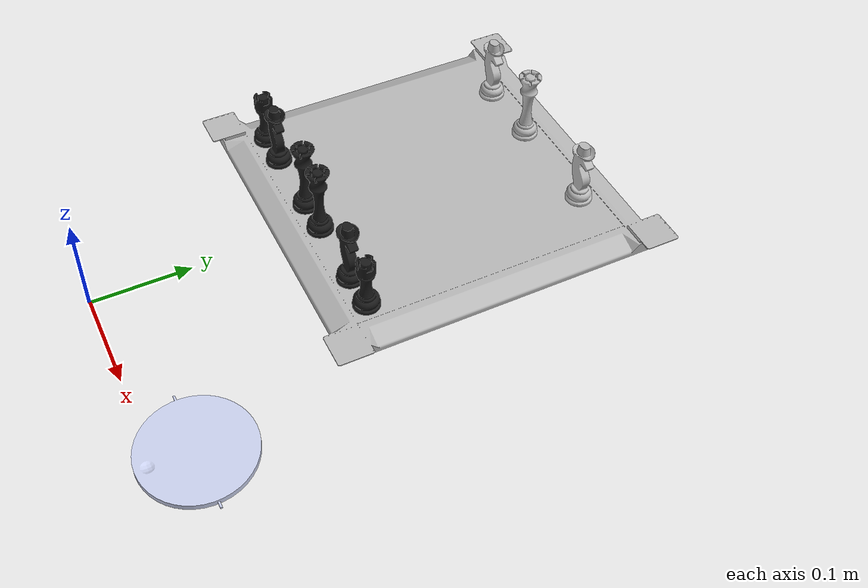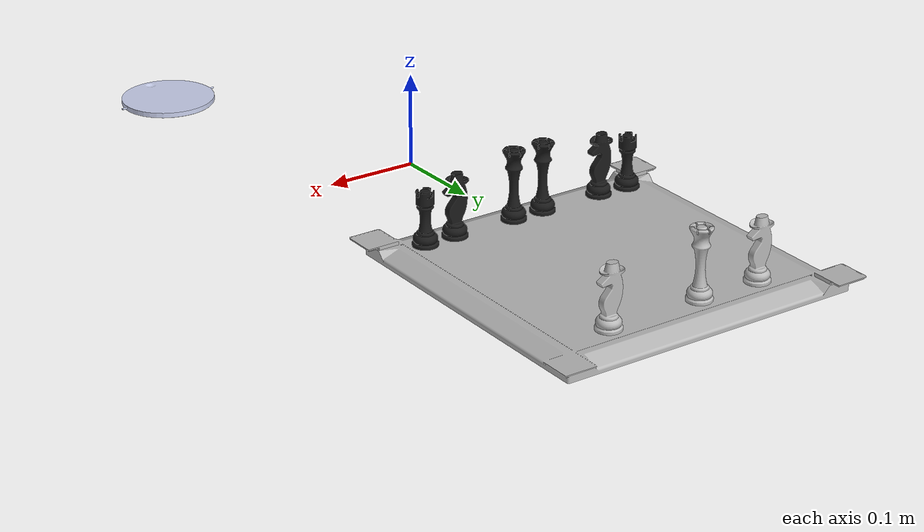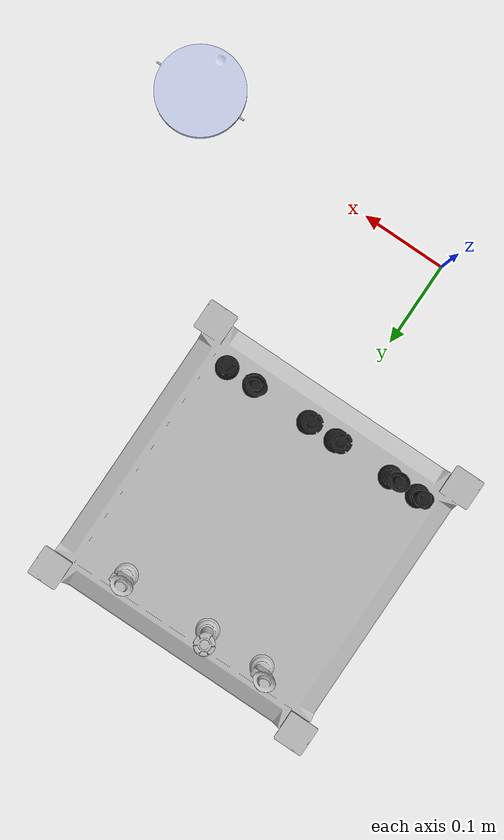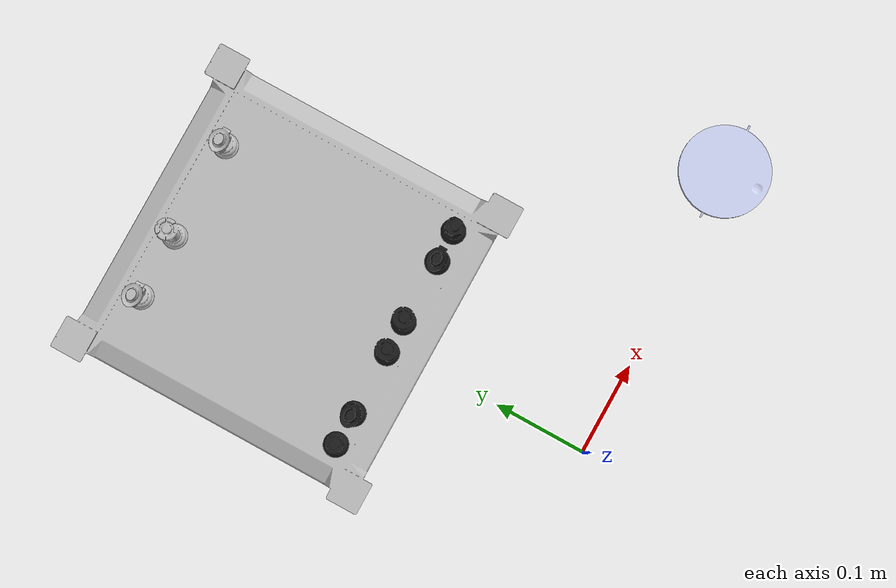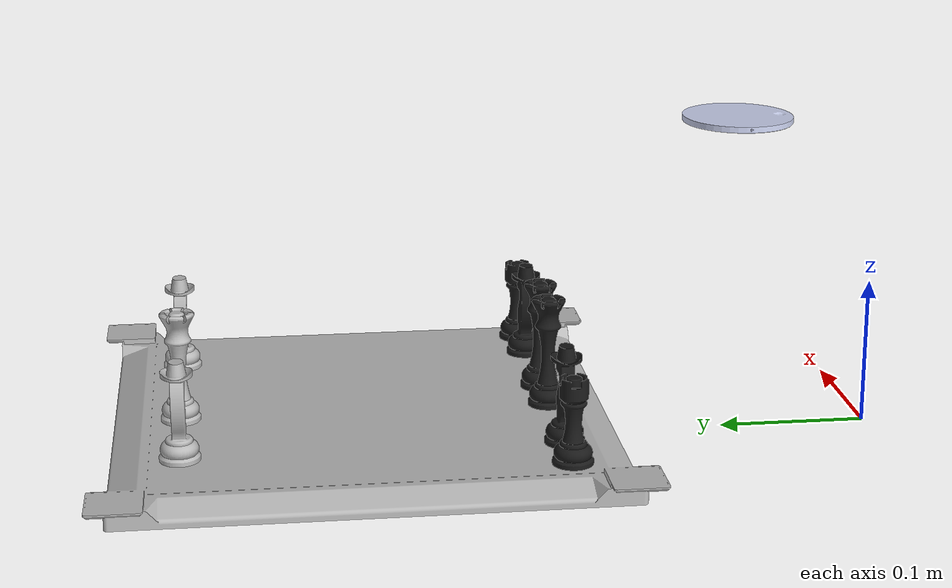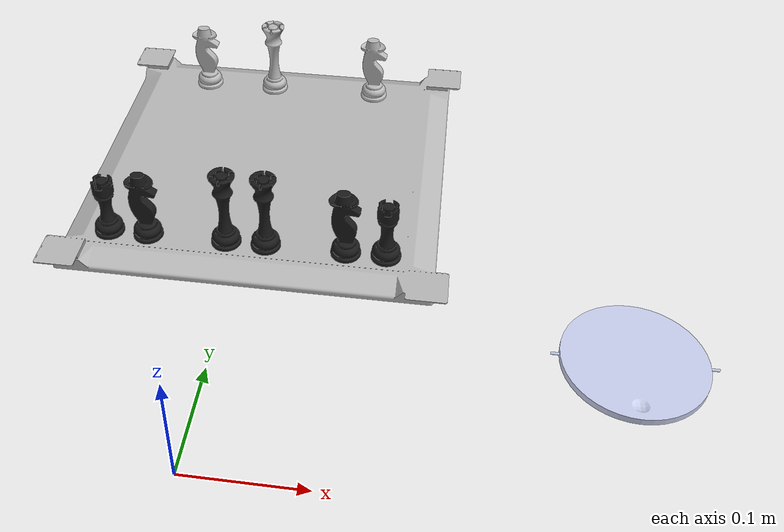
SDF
<sdf version="1.7">
 <world name="default">
  <gravity>0 0 -9.8</gravity>
  <magnetic_field>6e-06 2.3e-05 -4.2e-05</magnetic_field>
  <atmosphere type="adiabatic"/>
  <physics type="ode">
   <max_step_size>0.001</max_step_size>
   <real_time_factor>1</real_time_factor>
   <real_time_update_rate>1000</real_time_update_rate>
  </physics>
  <scene><ambient>0.4 0.4 0.4 1</ambient><background>0.7 0.7 0.7 1</background><shadows>1</shadows></scene>
  <audio><device>default</device></audio>
  <spherical_coordinates>
   <surface_model>EARTH_WGS84</surface_model>
   <latitude_deg>0</latitude_deg>
   <longitude_deg>0</longitude_deg>
   <elevation>0</elevation>
   <heading_deg>0</heading_deg>
  </spherical_coordinates>
  <model name="board">
   <static>1</static>
   <link name="link">
    <visual name="visual"><geometry><mesh><uri>model://board/meshes/board.dae</uri></mesh></geometry></visual>
    <collision name="collision">
     <geometry><mesh><uri>model://board/meshes/board.dae</uri></mesh></geometry>
    </collision>
   </link>
   <pose>-0.011355 0.342107 0.010873 0 -0 0</pose>
  </model>
  <light name="user_point_light_0" type="point">
   <pose>-0.050834 1.0999 1 0 -0 0</pose>
   <diffuse>0.5 0.5 0.5 1</diffuse>
   <specular>0.1 0.1 0.1 1</specular>
   <attenuation>
    <range>20</range>
    <constant>0.5</constant>
    <linear>0.01</linear>
    <quadratic>0.001</quadratic>
   </attenuation>
   <cast_shadows>0</cast_shadows>
   <direction>0 0 -1</direction>
   <spot><inner_angle>0</inner_angle><outer_angle>0</outer_angle><falloff>0</falloff></spot>
  </light>
  <model name="black_rook_a8">
   <static>0</static>
   <link name="link">
    <inertial>
     <mass>0.05</mass>
     <inertia><ixx>1e-05</ixx><iyy>1e-05</iyy><izz>1e-05</izz><ixy>0</ixy><ixz>0</ixz><iyz>0</iyz></inertia>
    </inertial>
    <collision name="collision">
     <geometry><mesh><uri>model://black_rook/meshes/black_rook.dae</uri></mesh></geometry>
     <surface><friction><ode><mu>1</mu><mu2>1</mu2></ode></friction></surface>
    </collision>
    <visual name="visual">
     <geometry><mesh><uri>model://black_rook/meshes/black_rook.dae</uri></mesh></geometry>
    </visual>
   </link>
   <plugin name="ros2_objectpose_plugin" filename="libros2_objectpose_plugin.so">
    <ros><namespace>black_rook_a8</namespace></ros>
   </plugin>
   <pose>0.13184 0.222449 0.024967 0.000528 -0.000646 -0.000872</pose>
  </model>
  <model name="black_rook_h8">
   <static>0</static>
   <link name="link">
    <inertial>
     <mass>0.05</mass>
     <inertia><ixx>1e-05</ixx><iyy>1e-05</iyy><izz>1e-05</izz><ixy>0</ixy><ixz>0</ixz><iyz>0</iyz></inertia>
    </inertial>
    <collision name="collision">
     <geometry><mesh><uri>model://black_rook/meshes/black_rook.dae</uri></mesh></geometry>
     <surface><friction><ode><mu>1</mu><mu2>1</mu2></ode></friction></surface>
    </collision>
    <visual name="visual">
     <geometry><mesh><uri>model://black_rook/meshes/black_rook.dae</uri></mesh></geometry>
    </visual>
   </link>
   <plugin name="ros2_objectpose_plugin" filename="libros2_objectpose_plugin.so">
    <ros><namespace>black_rook_h8</namespace></ros>
   </plugin>
   <pose>-0.113233 0.222503 0.024971 0.000232 -5.6e-05 -0.001577</pose>
  </model>
  <model name="black_knight_b8">
   <static>0</static>
   <link name="link">
    <inertial>
     <mass>0.05</mass>
     <inertia><ixx>1e-05</ixx><iyy>1e-05</iyy><izz>1e-05</izz><ixy>0</ixy><ixz>0</ixz><iyz>0</iyz></inertia>
    </inertial>
    <collision name="collision">
     <geometry><mesh><uri>model://black_knight/meshes/black_knight.dae</uri></mesh></geometry>
     <surface><friction><ode><mu>1</mu><mu2>1</mu2></ode></friction></surface>
    </collision>
    <visual name="visual">
     <geometry><mesh><uri>model://black_knight/meshes/black_knight.dae</uri></mesh></geometry>
    </visual>
   </link>
   <plugin name="ros2_objectpose_plugin" filename="libros2_objectpose_plugin.so">
    <ros><namespace>black_knight_b8</namespace></ros>
   </plugin>
   <pose>0.096603 0.222404 0.024973 -3e-05 -5.1e-05 -9.5e-05</pose>
  </model>
  <model name="black_knight_g8">
   <static>0</static>
   <link name="link">
    <inertial>
     <mass>0.05</mass>
     <inertia><ixx>1e-05</ixx><iyy>1e-05</iyy><izz>1e-05</izz><ixy>0</ixy><ixz>0</ixz><iyz>0</iyz></inertia>
    </inertial>
    <collision name="collision">
     <geometry><mesh><uri>model://black_knight/meshes/black_knight.dae</uri></mesh></geometry>
     <surface><friction><ode><mu>1</mu><mu2>1</mu2></ode></friction></surface>
    </collision>
    <visual name="visual">
     <geometry><mesh><uri>model://black_knight/meshes/black_knight.dae</uri></mesh></geometry>
    </visual>
   </link>
   <plugin name="ros2_objectpose_plugin" filename="libros2_objectpose_plugin.so">
    <ros><namespace>black_knight_g8</namespace></ros>
   </plugin>
   <pose>-0.078397 0.222404 0.024973 7.3e-05 -2.7e-05 -8.9e-05</pose>
  </model>
  <model name="white_knight_b1">
   <static>0</static>
   <link name="link">
    <inertial>
     <mass>0.05</mass>
     <inertia><ixx>1e-05</ixx><iyy>1e-05</iyy><izz>1e-05</izz><ixy>0</ixy><ixz>0</ixz><iyz>0</iyz></inertia>
    </inertial>
    <collision name="collision">
     <geometry><mesh><uri>model://white_knight/meshes/white_knight.dae</uri></mesh></geometry>
     <surface><friction><ode><mu>1</mu><mu2>1</mu2></ode></friction></surface>
    </collision>
    <visual name="visual">
     <geometry><mesh><uri>model://white_knight/meshes/white_knight.dae</uri></mesh></geometry>
    </visual>
   </link>
   <plugin name="ros2_objectpose_plugin" filename="libros2_objectpose_plugin.so">
    <ros><namespace>white_knight_b1</namespace></ros>
   </plugin>
   <pose>0.096604 0.467404 0.024973 6.9e-05 -2.5e-05 -9.1e-05</pose>
  </model>
  <model name="white_knight_g1">
   <static>0</static>
   <link name="link">
    <inertial>
     <mass>0.05</mass>
     <inertia><ixx>1e-05</ixx><iyy>1e-05</iyy><izz>1e-05</izz><ixy>0</ixy><ixz>0</ixz><iyz>0</iyz></inertia>
    </inertial>
    <collision name="collision">
     <geometry><mesh><uri>model://white_knight/meshes/white_knight.dae</uri></mesh></geometry>
     <surface><friction><ode><mu>1</mu><mu2>1</mu2></ode></friction></surface>
    </collision>
    <visual name="visual">
     <geometry><mesh><uri>model://white_knight/meshes/white_knight.dae</uri></mesh></geometry>
    </visual>
   </link>
   <plugin name="ros2_objectpose_plugin" filename="libros2_objectpose_plugin.so">
    <ros><namespace>white_knight_g1</namespace></ros>
   </plugin>
   <pose>-0.078398 0.467404 0.024973 -3.2e-05 -6.1e-05 -9.6e-05</pose>
  </model>
  <model name="black_queen_d8">
   <static>0</static>
   <link name="link">
    <inertial>
     <mass>0.05</mass>
     <inertia><ixx>1e-05</ixx><iyy>1e-05</iyy><izz>1e-05</izz><ixy>0</ixy><ixz>0</ixz><iyz>0</iyz></inertia>
    </inertial>
    <collision name="collision">
     <geometry><mesh><uri>model://black_queen/meshes/black_queen.dae</uri></mesh></geometry>
     <surface><friction><ode><mu>1</mu><mu2>1</mu2></ode></friction></surface>
    </collision>
    <visual name="visual">
     <geometry><mesh><uri>model://black_queen/meshes/black_queen.dae</uri></mesh></geometry>
    </visual>
   </link>
   <plugin name="ros2_objectpose_plugin" filename="libros2_objectpose_plugin.so">
    <ros><namespace>black_queen_d8</namespace></ros>
   </plugin>
   <pose>0.026705 0.222518 0.024973 4e-06 -4.6e-05 0.001388</pose>
  </model>
  <model name="black_king_e8">
   <static>0</static>
   <link name="link">
    <inertial>
     <mass>0.05</mass>
     <inertia><ixx>1e-05</ixx><iyy>1e-05</iyy><izz>1e-05</izz><ixy>0</ixy><ixz>0</ixz><iyz>0</iyz></inertia>
    </inertial>
    <collision name="collision">
     <geometry><mesh><uri>model://black_king/meshes/black_king.dae</uri></mesh></geometry>
     <surface><friction><ode><mu>1</mu><mu2>1</mu2></ode></friction></surface>
    </collision>
    <visual name="visual">
     <geometry><mesh><uri>model://black_king/meshes/black_king.dae</uri></mesh></geometry>
    </visual>
   </link>
   <plugin name="ros2_objectpose_plugin" filename="libros2_objectpose_plugin.so">
    <ros><namespace>black_king_e8</namespace></ros>
   </plugin>
   <pose>-0.008361 0.222435 0.024973 5.1e-05 -3.4e-05 0.001191</pose>
  </model>
  <model name="white_king_e1">
   <static>0</static>
   <link name="link">
    <inertial>
     <mass>0.05</mass>
     <inertia><ixx>1e-05</ixx><iyy>1e-05</iyy><izz>1e-05</izz><ixy>0</ixy><ixz>0</ixz><iyz>0</iyz></inertia>
    </inertial>
    <collision name="collision">
     <geometry><mesh><uri>model://white_king/meshes/white_king.dae</uri></mesh></geometry>
     <surface><friction><ode><mu>1</mu><mu2>1</mu2></ode></friction></surface>
    </collision>
    <visual name="visual">
     <geometry><mesh><uri>model://white_king/meshes/white_king.dae</uri></mesh></geometry>
    </visual>
   </link>
   <plugin name="ros2_objectpose_plugin" filename="libros2_objectpose_plugin.so">
    <ros><namespace>white_king_e1</namespace></ros>
   </plugin>
   <pose>-0.0084 0.4674 0.024973 -4.6e-05 -5.3e-05 -6e-06</pose>
  </model>
  <plugin name="gazebo_link_attacher" filename="libgazebo_link_attacher.so"/>
  <model name="chess_bin_lid">
   <static>0</static>
   <link name="link">
    <inertial>
     <mass>0.2</mass>
     <inertia><ixx>1e-05</ixx><iyy>1e-05</iyy><izz>1e-05</izz><ixy>0</ixy><ixz>0</ixz><iyz>0</iyz></inertia>
    </inertial>
    <collision name="collision">
     <geometry><mesh><uri>model://chess_bin_lid/meshes/chess_bin_lid.dae</uri></mesh></geometry>
     <surface><friction><ode><mu>1</mu><mu2>1</mu2></ode></friction></surface>
    </collision>
    <visual name="visual">
     <geometry><mesh><uri>model://chess_bin_lid/meshes/chess_bin_lid.dae</uri></mesh></geometry>
    </visual>
   </link>
   <pose>0.294988 0.020876 -9.8e-05 0.00595 -0.000107 9.1e-05</pose>
  </model>
 </world>
</sdf>
